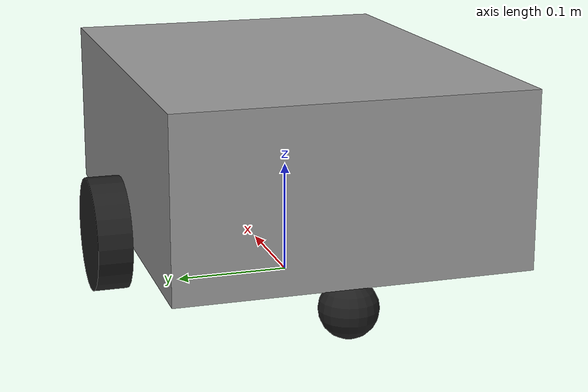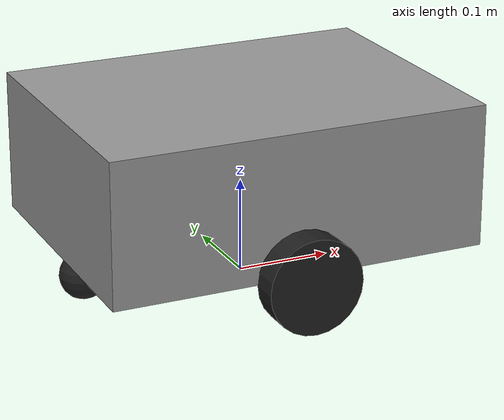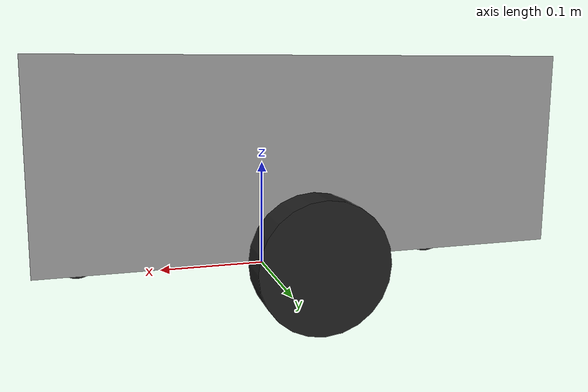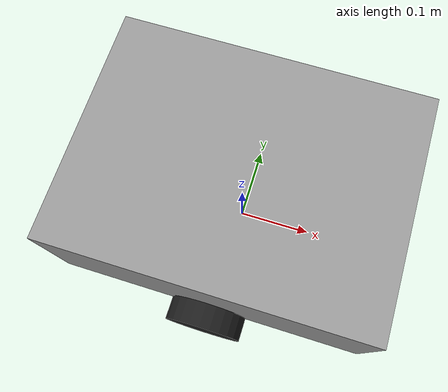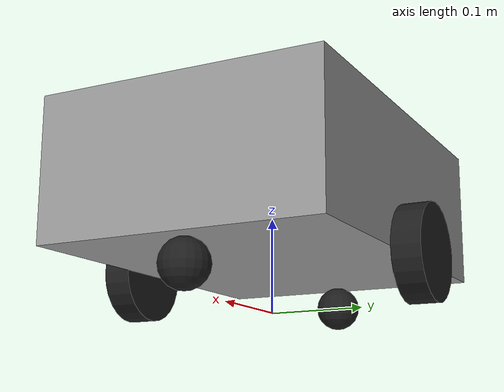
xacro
<?xml version="1.0"?>
<robot xmlns:xacro="http://www.ros.org/wiki/xacro">

  <xacro:include filename="inertial_macros.xacro"/>

  <!-- Chassis dimensions (meters, kg) -->
  <xacro:property name="chassis_length" value="0.40"/>
  <xacro:property name="chassis_width" value="0.30"/>
  <xacro:property name="chassis_height" value="0.15"/>
  <xacro:property name="chassis_mass" value="5.0"/>

  <!-- Wheel dimensions -->
  <xacro:property name="wheel_radius" value="0.05"/>
  <xacro:property name="wheel_thickness" value="0.03"/>
  <xacro:property name="wheel_mass" value="0.2"/>

  <!-- Caster dimensions -->
  <xacro:property name="caster_radius" value="0.025"/>
  <xacro:property name="caster_mass" value="0.1"/>

  <link name="base_footprint"/>

  <joint name="base_footprint_joint" type="fixed">
    <parent link="base_footprint"/>
    <child link="base_link"/>
    <origin xyz="0 0 ${wheel_radius}" rpy="0 0 0"/>
  </joint>

  <!-- Chassis -->
  <link name="base_link">
    <visual>
      <origin xyz="0 0 ${chassis_height/2}" rpy="0 0 0"/>
      <geometry>
        <box size="${chassis_length} ${chassis_width} ${chassis_height}"/>
      </geometry>
      <material name="chassis_grey"/>
    </visual>
    <collision>
      <origin xyz="0 0 ${chassis_height/2}" rpy="0 0 0"/>
      <geometry>
        <box size="${chassis_length} ${chassis_width} ${chassis_height}"/>
      </geometry>
    </collision>
    <xacro:box_inertia
      mass="${chassis_mass}" x="${chassis_length}" y="${chassis_width}" z="${chassis_height}"
      origin_xyz="0 0 ${chassis_height/2}" origin_rpy="0 0 0"/>
  </link>

  <xacro:macro name="wheel" params="prefix reflect">
    <link name="${prefix}_wheel_link">
      <visual>
        <origin xyz="0 0 0" rpy="1.5708 0 0"/>
        <geometry>
          <cylinder radius="${wheel_radius}" length="${wheel_thickness}"/>
        </geometry>
        <material name="wheel_black"/>
      </visual>
      <collision>
        <origin xyz="0 0 0" rpy="1.5708 0 0"/>
        <geometry>
          <cylinder radius="${wheel_radius}" length="${wheel_thickness}"/>
        </geometry>
      </collision>
      <xacro:cylinder_inertia
        mass="${wheel_mass}" radius="${wheel_radius}" length="${wheel_thickness}"
        origin_xyz="0 0 0" origin_rpy="1.5708 0 0"/>
    </link>

    <joint name="${prefix}_wheel_joint" type="continuous">
      <parent link="base_link"/>
      <child link="${prefix}_wheel_link"/>
      <origin xyz="0 ${reflect * (chassis_width/2 + wheel_thickness/2)} 0" rpy="0 0 0"/>
      <axis xyz="0 1 0"/>
      <limit effort="10.0" velocity="10.0"/>
    </joint>
  </xacro:macro>

  <xacro:wheel prefix="left" reflect="1"/>
  <xacro:wheel prefix="right" reflect="-1"/>

  <xacro:macro name="caster" params="prefix reflect">
    <link name="${prefix}_caster_link">
      <visual>
        <geometry>
          <sphere radius="${caster_radius}"/>
        </geometry>
        <material name="caster_black"/>
      </visual>
      <collision>
        <geometry>
          <sphere radius="${caster_radius}"/>
        </geometry>
      </collision>
      <xacro:sphere_inertia
        mass="${caster_mass}" radius="${caster_radius}"
        origin_xyz="0 0 0" origin_rpy="0 0 0"/>
    </link>

    <joint name="${prefix}_caster_joint" type="fixed">
      <parent link="base_link"/>
      <child link="${prefix}_caster_link"/>
      <origin xyz="${reflect * (chassis_length/2 - caster_radius)} 0 ${-(wheel_radius - caster_radius)}" rpy="0 0 0"/>
    </joint>
  </xacro:macro>

  <xacro:caster prefix="front" reflect="1"/>
  <xacro:caster prefix="rear" reflect="-1"/>

</robot>

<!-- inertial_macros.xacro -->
<robot xmlns:xacro="http://www.ros.org/wiki/xacro">

  <xacro:macro name="box_inertia" params="mass x y z origin_xyz origin_rpy">
    <inertial>
      <origin xyz="${origin_xyz}" rpy="${origin_rpy}"/>
      <mass value="${mass}"/>
      <inertia
        ixx="${(1/12) * mass * (y*y + z*z)}" ixy="0.0" ixz="0.0"
        iyy="${(1/12) * mass * (x*x + z*z)}" iyz="0.0"
        izz="${(1/12) * mass * (x*x + y*y)}"/>
    </inertial>
  </xacro:macro>

  <xacro:macro name="cylinder_inertia" params="mass radius length origin_xyz origin_rpy">
    <inertial>
      <origin xyz="${origin_xyz}" rpy="${origin_rpy}"/>
      <mass value="${mass}"/>
      <inertia
        ixx="${(1/12) * mass * (3*radius*radius + length*length)}" ixy="0.0" ixz="0.0"
        iyy="${(1/12) * mass * (3*radius*radius + length*length)}" iyz="0.0"
        izz="${0.5 * mass * radius*radius}"/>
    </inertial>
  </xacro:macro>

  <xacro:macro name="sphere_inertia" params="mass radius origin_xyz origin_rpy">
    <inertial>
      <origin xyz="${origin_xyz}" rpy="${origin_rpy}"/>
      <mass value="${mass}"/>
      <inertia
        ixx="${(2/5) * mass * radius*radius}" ixy="0.0" ixz="0.0"
        iyy="${(2/5) * mass * radius*radius}" iyz="0.0"
        izz="${(2/5) * mass * radius*radius}"/>
    </inertial>
  </xacro:macro>

</robot>
